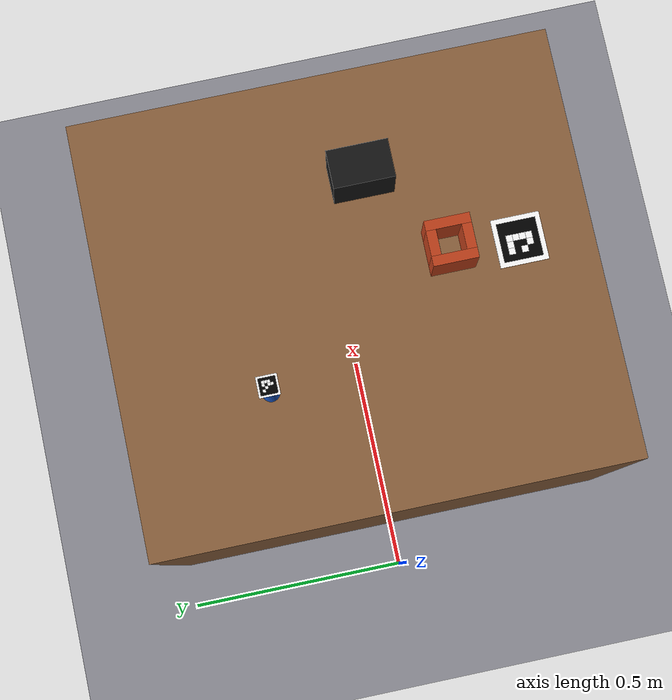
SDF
<?xml version="1.0"?>
<sdf version="1.9">
  <world name="phase1_baseline">
    <physics name="1ms" type="ignored">
      <max_step_size>0.004</max_step_size>
      <real_time_factor>1.0</real_time_factor>
    </physics>
    <plugin filename="gz-sim-physics-system" name="gz::sim::systems::Physics"/>
    <plugin filename="gz-sim-contact-system" name="gz::sim::systems::Contact"/>
    <plugin filename="gz-sim-user-commands-system" name="gz::sim::systems::UserCommands"/>
    <plugin filename="gz-sim-scene-broadcaster-system" name="gz::sim::systems::SceneBroadcaster"/>
    <plugin filename="gz-sim-sensors-system" name="gz::sim::systems::Sensors">
      <render_engine>ogre2</render_engine>
    </plugin>

    <scene>
      <ambient>0.55 0.55 0.55 1</ambient>
      <background>0.8 0.82 0.85 1</background>
      <shadows>true</shadows>
    </scene>
    <light name="sun" type="directional">
      <pose>0 0 5 0 0 0</pose>
      <cast_shadows>true</cast_shadows>
      <diffuse>0.9 0.9 0.9 1</diffuse>
      <specular>0.2 0.2 0.2 1</specular>
      <direction>-0.4 0.2 -0.9</direction>
    </light>

    <model name="ground_plane">
      <static>true</static>
      <link name="link">
        <collision name="collision">
          <geometry><plane><normal>0 0 1</normal><size>10 10</size></plane></geometry>
        </collision>
        <visual name="visual">
          <geometry><plane><normal>0 0 1</normal><size>10 10</size></plane></geometry>
          <material><ambient>0.55 0.55 0.58 1</ambient><diffuse>0.55 0.55 0.58 1</diffuse></material>
        </visual>
      </link>
    </model>

    <model name="work_table">
      <static>true</static>
      <pose>0.55 0 0.375 0 0 0</pose>
      <link name="table_link">
        <collision name="top_collision"><geometry><box><size>0.9 1.0 0.75</size></box></geometry></collision>
        <visual name="top_visual">
          <geometry><box><size>0.9 1.0 0.75</size></box></geometry>
          <material><ambient>0.35 0.25 0.18 1</ambient><diffuse>0.55 0.38 0.24 1</diffuse></material>
        </visual>
      </link>
    </model>

    <!-- Nominal cylindrical part: 36 mm diameter, 120 mm long. -->
    <model name="peg">
      <pose>0.38 0.20 0.812 0 0 0</pose>
      <link name="peg_link">
        <inertial>
          <mass>0.08</mass>
          <inertia><ixx>0.000102</ixx><iyy>0.000102</iyy><izz>0.000013</izz></inertia>
        </inertial>
        <collision name="collision">
          <geometry><cylinder><radius>0.018</radius><length>0.12</length></cylinder></geometry>
          <surface><friction><ode><mu>0.7</mu><mu2>0.7</mu2></ode></friction></surface>
        </collision>
        <sensor name="peg_contact_sensor" type="contact">
          <always_on>true</always_on>
          <update_rate>250</update_rate>
          <contact>
            <collision>collision</collision>
            <topic>/phase1/peg/contacts</topic>
          </contact>
        </sensor>
        <visual name="visual">
          <geometry><cylinder><radius>0.018</radius><length>0.12</length></cylinder></geometry>
          <material><ambient>0.1 0.35 0.8 1</ambient><diffuse>0.1 0.35 0.8 1</diffuse></material>
        </visual>
        <!-- ArUco DICT_4X4_50 marker 0, mounted on a white top label. -->
        <visual name="peg_tag_quiet_zone">
          <pose>0 0 0.0605 0 0 0</pose>
          <geometry><box><size>0.042 0.042 0.001</size></box></geometry>
          <material><ambient>1 1 1 1</ambient><diffuse>1 1 1 1</diffuse><emissive>1 1 1 1</emissive></material>
        </visual>
        <visual name="peg_tag_black">
          <pose>0 0 0.06115 0 0 0</pose>
          <geometry><box><size>0.034 0.034 0.0002</size></box></geometry>
          <material><ambient>0 0 0 1</ambient><diffuse>0 0 0 1</diffuse></material>
        </visual>
        <visual name="peg_tag_0_w_11"><pose>-0.0085 0.0085 0.06135 0 0 0</pose><geometry><box><size>0.005667 0.005667 0.0002</size></box></geometry><material><ambient>1 1 1 1</ambient><diffuse>1 1 1 1</diffuse><emissive>1 1 1 1</emissive></material></visual>
        <visual name="peg_tag_0_w_13"><pose>0.002833 0.0085 0.06135 0 0 0</pose><geometry><box><size>0.005667 0.005667 0.0002</size></box></geometry><material><ambient>1 1 1 1</ambient><diffuse>1 1 1 1</diffuse><emissive>1 1 1 1</emissive></material></visual>
        <visual name="peg_tag_0_w_14"><pose>0.0085 0.0085 0.06135 0 0 0</pose><geometry><box><size>0.005667 0.005667 0.0002</size></box></geometry><material><ambient>1 1 1 1</ambient><diffuse>1 1 1 1</diffuse><emissive>1 1 1 1</emissive></material></visual>
        <visual name="peg_tag_0_w_22"><pose>-0.002833 0.002833 0.06135 0 0 0</pose><geometry><box><size>0.005667 0.005667 0.0002</size></box></geometry><material><ambient>1 1 1 1</ambient><diffuse>1 1 1 1</diffuse><emissive>1 1 1 1</emissive></material></visual>
        <visual name="peg_tag_0_w_24"><pose>0.0085 0.002833 0.06135 0 0 0</pose><geometry><box><size>0.005667 0.005667 0.0002</size></box></geometry><material><ambient>1 1 1 1</ambient><diffuse>1 1 1 1</diffuse><emissive>1 1 1 1</emissive></material></visual>
        <visual name="peg_tag_0_w_33"><pose>0.002833 -0.002833 0.06135 0 0 0</pose><geometry><box><size>0.005667 0.005667 0.0002</size></box></geometry><material><ambient>1 1 1 1</ambient><diffuse>1 1 1 1</diffuse><emissive>1 1 1 1</emissive></material></visual>
        <visual name="peg_tag_0_w_34"><pose>0.0085 -0.002833 0.06135 0 0 0</pose><geometry><box><size>0.005667 0.005667 0.0002</size></box></geometry><material><ambient>1 1 1 1</ambient><diffuse>1 1 1 1</diffuse><emissive>1 1 1 1</emissive></material></visual>
        <visual name="peg_tag_0_w_43"><pose>0.002833 -0.0085 0.06135 0 0 0</pose><geometry><box><size>0.005667 0.005667 0.0002</size></box></geometry><material><ambient>1 1 1 1</ambient><diffuse>1 1 1 1</diffuse><emissive>1 1 1 1</emissive></material></visual>
      </link>
    </model>

    <!-- Four walls form a 50 mm square opening: deliberately large Phase 1 clearance. -->
    <model name="fixture">
      <static>true</static>
      <pose>0.58 -0.20 0.80 0 0 0</pose>
      <link name="fixture_link">
        <collision name="wall_x_pos"><pose>0.035 0 0.05 0 0 0</pose><geometry><box><size>0.02 0.09 0.10</size></box></geometry></collision>
        <collision name="wall_x_neg"><pose>-0.035 0 0.05 0 0 0</pose><geometry><box><size>0.02 0.09 0.10</size></box></geometry></collision>
        <collision name="wall_y_pos"><pose>0 0.035 0.05 0 0 0</pose><geometry><box><size>0.05 0.02 0.10</size></box></geometry></collision>
        <collision name="wall_y_neg"><pose>0 -0.035 0.05 0 0 0</pose><geometry><box><size>0.05 0.02 0.10</size></box></geometry></collision>
        <visual name="wall_x_pos_visual"><pose>0.035 0 0.05 0 0 0</pose><geometry><box><size>0.02 0.09 0.10</size></box></geometry><material><ambient>0.75 0.25 0.1 1</ambient><diffuse>0.75 0.25 0.1 1</diffuse></material></visual>
        <visual name="wall_x_neg_visual"><pose>-0.035 0 0.05 0 0 0</pose><geometry><box><size>0.02 0.09 0.10</size></box></geometry><material><ambient>0.75 0.25 0.1 1</ambient><diffuse>0.75 0.25 0.1 1</diffuse></material></visual>
        <visual name="wall_y_pos_visual"><pose>0 0.035 0.05 0 0 0</pose><geometry><box><size>0.05 0.02 0.10</size></box></geometry><material><ambient>0.75 0.25 0.1 1</ambient><diffuse>0.75 0.25 0.1 1</diffuse></material></visual>
        <visual name="wall_y_neg_visual"><pose>0 -0.035 0.05 0 0 0</pose><geometry><box><size>0.05 0.02 0.10</size></box></geometry><material><ambient>0.75 0.25 0.1 1</ambient><diffuse>0.75 0.25 0.1 1</diffuse></material></visual>
        <!-- ArUco DICT_4X4_50 marker 1, offset 150 mm behind fixture center. -->
        <visual name="fixture_tag_quiet_zone"><pose>0 -0.15 -0.0485 0 0 0</pose><geometry><box><size>0.10 0.10 0.001</size></box></geometry><material><ambient>1 1 1 1</ambient><diffuse>1 1 1 1</diffuse><emissive>1 1 1 1</emissive></material></visual>
        <visual name="fixture_tag_black"><pose>0 -0.15 -0.04785 0 0 0</pose><geometry><box><size>0.08 0.08 0.0002</size></box></geometry><material><ambient>0 0 0 1</ambient><diffuse>0 0 0 1</diffuse></material></visual>
        <visual name="fixture_tag_1_w_21"><pose>0.006667 -0.13 -0.04765 0 0 0</pose><geometry><box><size>0.013333 0.013333 0.0002</size></box></geometry><material><ambient>1 1 1 1</ambient><diffuse>1 1 1 1</diffuse><emissive>1 1 1 1</emissive></material></visual>
        <visual name="fixture_tag_1_w_22"><pose>0.006667 -0.143333 -0.04765 0 0 0</pose><geometry><box><size>0.013333 0.013333 0.0002</size></box></geometry><material><ambient>1 1 1 1</ambient><diffuse>1 1 1 1</diffuse><emissive>1 1 1 1</emissive></material></visual>
        <visual name="fixture_tag_1_w_23"><pose>0.006667 -0.156667 -0.04765 0 0 0</pose><geometry><box><size>0.013333 0.013333 0.0002</size></box></geometry><material><ambient>1 1 1 1</ambient><diffuse>1 1 1 1</diffuse><emissive>1 1 1 1</emissive></material></visual>
        <visual name="fixture_tag_1_w_24"><pose>0.006667 -0.17 -0.04765 0 0 0</pose><geometry><box><size>0.013333 0.013333 0.0002</size></box></geometry><material><ambient>1 1 1 1</ambient><diffuse>1 1 1 1</diffuse><emissive>1 1 1 1</emissive></material></visual>
        <visual name="fixture_tag_1_w_31"><pose>-0.006667 -0.13 -0.04765 0 0 0</pose><geometry><box><size>0.013333 0.013333 0.0002</size></box></geometry><material><ambient>1 1 1 1</ambient><diffuse>1 1 1 1</diffuse><emissive>1 1 1 1</emissive></material></visual>
        <visual name="fixture_tag_1_w_34"><pose>-0.006667 -0.17 -0.04765 0 0 0</pose><geometry><box><size>0.013333 0.013333 0.0002</size></box></geometry><material><ambient>1 1 1 1</ambient><diffuse>1 1 1 1</diffuse><emissive>1 1 1 1</emissive></material></visual>
        <visual name="fixture_tag_1_w_41"><pose>-0.02 -0.13 -0.04765 0 0 0</pose><geometry><box><size>0.013333 0.013333 0.0002</size></box></geometry><material><ambient>1 1 1 1</ambient><diffuse>1 1 1 1</diffuse><emissive>1 1 1 1</emissive></material></visual>
        <visual name="fixture_tag_1_w_43"><pose>-0.02 -0.156667 -0.04765 0 0 0</pose><geometry><box><size>0.013333 0.013333 0.0002</size></box></geometry><material><ambient>1 1 1 1</ambient><diffuse>1 1 1 1</diffuse><emissive>1 1 1 1</emissive></material></visual>
      </link>
    </model>

    <model name="overhead_camera">
      <static>true</static>
      <pose>0.50 0 1.85 0 1.570796 0</pose>
      <link name="camera_link">
        <sensor name="rgbd_camera" type="rgbd_camera">
          <always_on>true</always_on>
          <update_rate>15</update_rate>
          <topic>/phase1/camera</topic>
          <camera>
            <horizontal_fov>1.047</horizontal_fov>
            <image><width>800</width><height>600</height><format>R8G8B8</format></image>
            <clip><near>0.05</near><far>5.0</far></clip>
          </camera>
        </sensor>
        <visual name="housing">
          <geometry><box><size>0.08 0.08 0.05</size></box></geometry>
          <material><ambient>0.08 0.08 0.08 1</ambient><diffuse>0.08 0.08 0.08 1</diffuse></material>
        </visual>
      </link>
    </model>
  </world>
</sdf>
